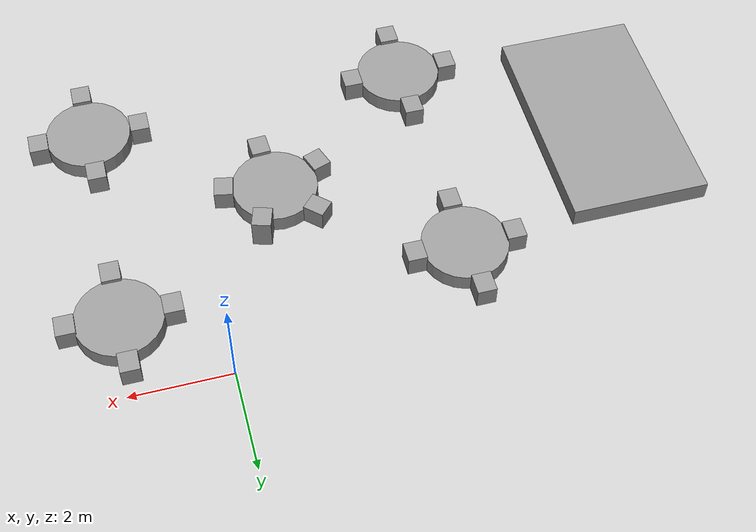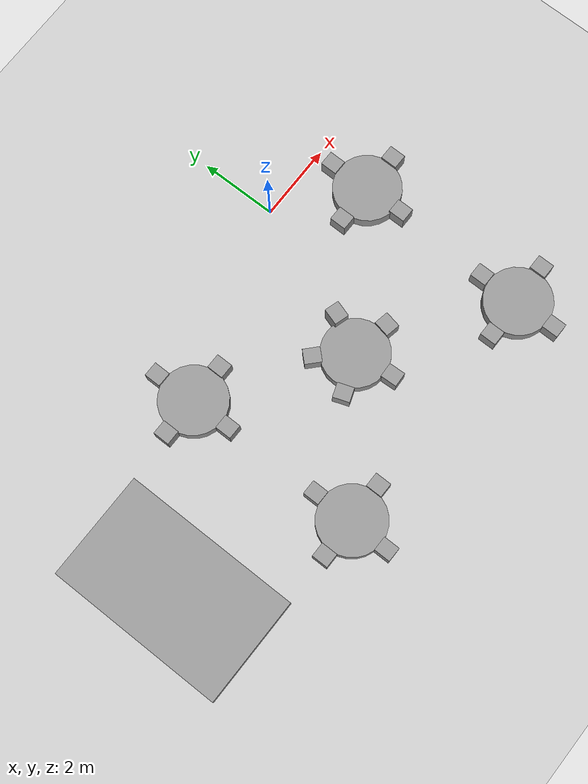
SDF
<sdf version="1.7">
 <world name="default">
  <model name="ground_plane">
   <static>1</static>
   <link name="link">
    <collision name="collision">
     <geometry><plane><normal>0 0 1</normal><size>100 100</size></plane></geometry>
     <surface><friction><ode><mu>100</mu><mu2>50</mu2></ode></friction></surface>
    </collision>
    <visual name="visual">
     <cast_shadows>0</cast_shadows>
     <geometry><plane><normal>0 0 1</normal><size>100 100</size></plane></geometry>
     <material>
      <script><uri>file://media/materials/scripts/gazebo.material</uri><name>Gazebo/Grey</name></script>
     </material>
    </visual>
   </link>
  </model>
  <model name="meeting_room">
   <link name="link_8">
    <inertial>
     <mass>2.00977</mass>
     <inertia>
      <ixx>0.447323</ixx>
      <ixy>0</ixy>
      <ixz>0</ixz>
      <iyy>0.447323</iyy>
      <iyz>0</iyz>
      <izz>0.737777</izz>
     </inertia>
    </inertial>
    <pose>-3.6001 2.26621 -0.007241 0 -0 0</pose>
    <visual name="visual">
     <geometry><cylinder><radius>0.85685</radius><length>0.684338</length></cylinder></geometry>
     <material>
      <lighting>1</lighting>
      <script><uri>file://media/materials/scripts/gazebo.material</uri><name>Gazebo/Grey</name></script>
      <shader type="pixel"/>
     </material>
    </visual>
    <collision name="collision">
     <geometry><cylinder><radius>0.85685</radius><length>0.684338</length></cylinder></geometry>
     <surface>
      <friction>
       <ode><mu>1</mu><mu2>1</mu2><fdir1>0 0 0</fdir1><slip1>0</slip1><slip2>0</slip2></ode>
       <torsional>
        <coefficient>1</coefficient>
        <patch_radius>0</patch_radius>
        <surface_radius>0</surface_radius>
        <use_patch_radius>1</use_patch_radius>
        <ode><slip>0</slip></ode>
       </torsional>
      </friction>
      <bounce><restitution_coefficient>0</restitution_coefficient><threshold>1e+06</threshold></bounce>
      <contact>
       <collide_without_contact>0</collide_without_contact>
       <collide_without_contact_bitmask>1</collide_without_contact_bitmask>
       <collide_bitmask>1</collide_bitmask>
       <ode>
        <soft_cfm>0</soft_cfm>
        <soft_erp>0.2</soft_erp>
        <kp>1e+13</kp>
        <kd>1</kd>
        <max_vel>0.01</max_vel>
        <min_depth>0</min_depth>
       </ode>
       <bullet>
        <split_impulse>1</split_impulse>
        <split_impulse_penetration_threshold>-0.01</split_impulse_penetration_threshold>
        <soft_cfm>0</soft_cfm>
        <soft_erp>0.2</soft_erp>
        <kp>1e+13</kp>
        <kd>1</kd>
       </bullet>
      </contact>
     </surface>
    </collision>
   </link>
   <link name="link_10">
    <inertial>
     <mass>0.135963</mass>
     <inertia>
      <ixx>0.0100134</ixx>
      <ixy>0</ixy>
      <ixz>0</ixz>
      <iyy>0.00955682</iyy>
      <iyz>0</iyz>
      <izz>0.00371094</izz>
     </inertia>
    </inertial>
    <pose>-2.55086 2.26121 -0.007241 0 -0 0</pose>
    <visual name="visual">
     <geometry><box><size>0.378966 0.428848 0.836578</size></box></geometry>
     <material>
      <lighting>1</lighting>
      <script><uri>file://media/materials/scripts/gazebo.material</uri><name>Gazebo/Grey</name></script>
      <shader type="pixel"/>
     </material>
    </visual>
    <collision name="collision">
     <geometry><box><size>0.378966 0.428848 0.836578</size></box></geometry>
     <surface>
      <friction>
       <ode><mu>1</mu><mu2>1</mu2><fdir1>0 0 0</fdir1><slip1>0</slip1><slip2>0</slip2></ode>
       <torsional>
        <coefficient>1</coefficient>
        <patch_radius>0</patch_radius>
        <surface_radius>0</surface_radius>
        <use_patch_radius>1</use_patch_radius>
        <ode><slip>0</slip></ode>
       </torsional>
      </friction>
      <bounce><restitution_coefficient>0</restitution_coefficient><threshold>1e+06</threshold></bounce>
      <contact>
       <collide_without_contact>0</collide_without_contact>
       <collide_without_contact_bitmask>1</collide_without_contact_bitmask>
       <collide_bitmask>1</collide_bitmask>
       <ode>
        <soft_cfm>0</soft_cfm>
        <soft_erp>0.2</soft_erp>
        <kp>1e+13</kp>
        <kd>1</kd>
        <max_vel>0.01</max_vel>
        <min_depth>0</min_depth>
       </ode>
       <bullet>
        <split_impulse>1</split_impulse>
        <split_impulse_penetration_threshold>-0.01</split_impulse_penetration_threshold>
        <soft_cfm>0</soft_cfm>
        <soft_erp>0.2</soft_erp>
        <kp>1e+13</kp>
        <kd>1</kd>
       </bullet>
      </contact>
     </surface>
    </collision>
   </link>
   <link name="link_10_clone">
    <inertial>
     <mass>0.135963</mass>
     <inertia>
      <ixx>0.0100134</ixx>
      <ixy>0</ixy>
      <ixz>0</ixz>
      <iyy>0.00955682</iyy>
      <iyz>0</iyz>
      <izz>0.00371094</izz>
     </inertia>
    </inertial>
    <pose>-3.58226 1.20119 -0.007241 0 -0 0</pose>
    <visual name="visual">
     <geometry><box><size>0.378966 0.428848 0.836578</size></box></geometry>
     <material>
      <lighting>1</lighting>
      <script><uri>file://media/materials/scripts/gazebo.material</uri><name>Gazebo/Grey</name></script>
      <shader type="pixel"/>
     </material>
    </visual>
    <collision name="collision">
     <geometry><box><size>0.378966 0.428848 0.836578</size></box></geometry>
     <surface>
      <friction>
       <ode><mu>1</mu><mu2>1</mu2><fdir1>0 0 0</fdir1><slip1>0</slip1><slip2>0</slip2></ode>
       <torsional>
        <coefficient>1</coefficient>
        <patch_radius>0</patch_radius>
        <surface_radius>0</surface_radius>
        <use_patch_radius>1</use_patch_radius>
        <ode><slip>0</slip></ode>
       </torsional>
      </friction>
      <bounce><restitution_coefficient>0</restitution_coefficient><threshold>1e+06</threshold></bounce>
      <contact>
       <collide_without_contact>0</collide_without_contact>
       <collide_without_contact_bitmask>1</collide_without_contact_bitmask>
       <collide_bitmask>1</collide_bitmask>
       <ode>
        <soft_cfm>0</soft_cfm>
        <soft_erp>0.2</soft_erp>
        <kp>1e+13</kp>
        <kd>1</kd>
        <max_vel>0.01</max_vel>
        <min_depth>0</min_depth>
       </ode>
       <bullet>
        <split_impulse>1</split_impulse>
        <split_impulse_penetration_threshold>-0.01</split_impulse_penetration_threshold>
        <soft_cfm>0</soft_cfm>
        <soft_erp>0.2</soft_erp>
        <kp>1e+13</kp>
        <kd>1</kd>
       </bullet>
      </contact>
     </surface>
    </collision>
   </link>
   <link name="link_10_clone_0">
    <inertial>
     <mass>0.135963</mass>
     <inertia>
      <ixx>0.0100134</ixx>
      <ixy>0</ixy>
      <ixz>0</ixz>
      <iyy>0.00955682</iyy>
      <iyz>0</iyz>
      <izz>0.00371094</izz>
     </inertia>
    </inertial>
    <pose>-4.61664 2.20642 -0.007241 0 -0 0</pose>
    <visual name="visual">
     <geometry><box><size>0.378966 0.428848 0.836578</size></box></geometry>
     <material>
      <lighting>1</lighting>
      <script><uri>file://media/materials/scripts/gazebo.material</uri><name>Gazebo/Grey</name></script>
      <shader type="pixel"/>
     </material>
    </visual>
    <collision name="collision">
     <geometry><box><size>0.378966 0.428848 0.836578</size></box></geometry>
     <surface>
      <friction>
       <ode><mu>1</mu><mu2>1</mu2><fdir1>0 0 0</fdir1><slip1>0</slip1><slip2>0</slip2></ode>
       <torsional>
        <coefficient>1</coefficient>
        <patch_radius>0</patch_radius>
        <surface_radius>0</surface_radius>
        <use_patch_radius>1</use_patch_radius>
        <ode><slip>0</slip></ode>
       </torsional>
      </friction>
      <bounce><restitution_coefficient>0</restitution_coefficient><threshold>1e+06</threshold></bounce>
      <contact>
       <collide_without_contact>0</collide_without_contact>
       <collide_without_contact_bitmask>1</collide_without_contact_bitmask>
       <collide_bitmask>1</collide_bitmask>
       <ode>
        <soft_cfm>0</soft_cfm>
        <soft_erp>0.2</soft_erp>
        <kp>1e+13</kp>
        <kd>1</kd>
        <max_vel>0.01</max_vel>
        <min_depth>0</min_depth>
       </ode>
       <bullet>
        <split_impulse>1</split_impulse>
        <split_impulse_penetration_threshold>-0.01</split_impulse_penetration_threshold>
        <soft_cfm>0</soft_cfm>
        <soft_erp>0.2</soft_erp>
        <kp>1e+13</kp>
        <kd>1</kd>
       </bullet>
      </contact>
     </surface>
    </collision>
   </link>
   <link name="link_10_clone_1">
    <inertial>
     <mass>0.135963</mass>
     <inertia>
      <ixx>0.0100134</ixx>
      <ixy>0</ixy>
      <ixz>0</ixz>
      <iyy>0.00955682</iyy>
      <iyz>0</iyz>
      <izz>0.00371094</izz>
     </inertia>
    </inertial>
    <pose>-3.6042 3.30031 -0.007241 0 -0 0</pose>
    <visual name="visual">
     <geometry><box><size>0.378966 0.428848 0.836578</size></box></geometry>
     <material>
      <lighting>1</lighting>
      <script><uri>file://media/materials/scripts/gazebo.material</uri><name>Gazebo/Grey</name></script>
      <shader type="pixel"/>
     </material>
    </visual>
    <collision name="collision">
     <geometry><box><size>0.378966 0.428848 0.836578</size></box></geometry>
     <surface>
      <friction>
       <ode><mu>1</mu><mu2>1</mu2><fdir1>0 0 0</fdir1><slip1>0</slip1><slip2>0</slip2></ode>
       <torsional>
        <coefficient>1</coefficient>
        <patch_radius>0</patch_radius>
        <surface_radius>0</surface_radius>
        <use_patch_radius>1</use_patch_radius>
        <ode><slip>0</slip></ode>
       </torsional>
      </friction>
      <bounce><restitution_coefficient>0</restitution_coefficient><threshold>1e+06</threshold></bounce>
      <contact>
       <collide_without_contact>0</collide_without_contact>
       <collide_without_contact_bitmask>1</collide_without_contact_bitmask>
       <collide_bitmask>1</collide_bitmask>
       <ode>
        <soft_cfm>0</soft_cfm>
        <soft_erp>0.2</soft_erp>
        <kp>1e+13</kp>
        <kd>1</kd>
        <max_vel>0.01</max_vel>
        <min_depth>0</min_depth>
       </ode>
       <bullet>
        <split_impulse>1</split_impulse>
        <split_impulse_penetration_threshold>-0.01</split_impulse_penetration_threshold>
        <soft_cfm>0</soft_cfm>
        <soft_erp>0.2</soft_erp>
        <kp>1e+13</kp>
        <kd>1</kd>
       </bullet>
      </contact>
     </surface>
    </collision>
   </link>
   <link name="link_10_clone_10">
    <inertial>
     <mass>0.135963</mass>
     <inertia>
      <ixx>0.0100134</ixx>
      <ixy>0</ixy>
      <ixz>0</ixz>
      <iyy>0.00955682</iyy>
      <iyz>0</iyz>
      <izz>0.00371094</izz>
     </inertia>
    </inertial>
    <pose>3.0439 3.40388 -0.007241 0 -0 0</pose>
    <visual name="visual">
     <geometry><box><size>0.378966 0.428848 0.836578</size></box></geometry>
     <material>
      <lighting>1</lighting>
      <script><uri>file://media/materials/scripts/gazebo.material</uri><name>Gazebo/Grey</name></script>
      <shader type="pixel"/>
     </material>
    </visual>
    <collision name="collision">
     <geometry><box><size>0.378966 0.428848 0.836578</size></box></geometry>
     <surface>
      <friction>
       <ode><mu>1</mu><mu2>1</mu2><fdir1>0 0 0</fdir1><slip1>0</slip1><slip2>0</slip2></ode>
       <torsional>
        <coefficient>1</coefficient>
        <patch_radius>0</patch_radius>
        <surface_radius>0</surface_radius>
        <use_patch_radius>1</use_patch_radius>
        <ode><slip>0</slip></ode>
       </torsional>
      </friction>
      <bounce><restitution_coefficient>0</restitution_coefficient><threshold>1e+06</threshold></bounce>
      <contact>
       <collide_without_contact>0</collide_without_contact>
       <collide_without_contact_bitmask>1</collide_without_contact_bitmask>
       <collide_bitmask>1</collide_bitmask>
       <ode>
        <soft_cfm>0</soft_cfm>
        <soft_erp>0.2</soft_erp>
        <kp>1e+13</kp>
        <kd>1</kd>
        <max_vel>0.01</max_vel>
        <min_depth>0</min_depth>
       </ode>
       <bullet>
        <split_impulse>1</split_impulse>
        <split_impulse_penetration_threshold>-0.01</split_impulse_penetration_threshold>
        <soft_cfm>0</soft_cfm>
        <soft_erp>0.2</soft_erp>
        <kp>1e+13</kp>
        <kd>1</kd>
       </bullet>
      </contact>
     </surface>
    </collision>
   </link>
   <link name="link_10_clone_11">
    <inertial>
     <mass>0.135963</mass>
     <inertia>
      <ixx>0.0100134</ixx>
      <ixy>0</ixy>
      <ixz>0</ixz>
      <iyy>0.00955682</iyy>
      <iyz>0</iyz>
      <izz>0.00371094</izz>
     </inertia>
    </inertial>
    <pose>3.07031 -1.23947 -0.007241 0 -0 0</pose>
    <visual name="visual">
     <geometry><box><size>0.378966 0.428848 0.836578</size></box></geometry>
     <material>
      <lighting>1</lighting>
      <script><uri>file://media/materials/scripts/gazebo.material</uri><name>Gazebo/Grey</name></script>
      <shader type="pixel"/>
     </material>
    </visual>
    <collision name="collision">
     <geometry><box><size>0.378966 0.428848 0.836578</size></box></geometry>
     <surface>
      <friction>
       <ode><mu>1</mu><mu2>1</mu2><fdir1>0 0 0</fdir1><slip1>0</slip1><slip2>0</slip2></ode>
       <torsional>
        <coefficient>1</coefficient>
        <patch_radius>0</patch_radius>
        <surface_radius>0</surface_radius>
        <use_patch_radius>1</use_patch_radius>
        <ode><slip>0</slip></ode>
       </torsional>
      </friction>
      <bounce><restitution_coefficient>0</restitution_coefficient><threshold>1e+06</threshold></bounce>
      <contact>
       <collide_without_contact>0</collide_without_contact>
       <collide_without_contact_bitmask>1</collide_without_contact_bitmask>
       <collide_bitmask>1</collide_bitmask>
       <ode>
        <soft_cfm>0</soft_cfm>
        <soft_erp>0.2</soft_erp>
        <kp>1e+13</kp>
        <kd>1</kd>
        <max_vel>0.01</max_vel>
        <min_depth>0</min_depth>
       </ode>
       <bullet>
        <split_impulse>1</split_impulse>
        <split_impulse_penetration_threshold>-0.01</split_impulse_penetration_threshold>
        <soft_cfm>0</soft_cfm>
        <soft_erp>0.2</soft_erp>
        <kp>1e+13</kp>
        <kd>1</kd>
       </bullet>
      </contact>
     </surface>
    </collision>
   </link>
   <link name="link_10_clone_12">
    <inertial>
     <mass>0.135963</mass>
     <inertia>
      <ixx>0.0100134</ixx>
      <ixy>0</ixy>
      <ixz>0</ixz>
      <iyy>0.00955682</iyy>
      <iyz>0</iyz>
      <izz>0.00371094</izz>
     </inertia>
    </inertial>
    <pose>4.06394 -2.2833 -0.007241 0 -0 0</pose>
    <visual name="visual">
     <geometry><box><size>0.378966 0.428848 0.836578</size></box></geometry>
     <material>
      <lighting>1</lighting>
      <script><uri>file://media/materials/scripts/gazebo.material</uri><name>Gazebo/Grey</name></script>
      <shader type="pixel"/>
     </material>
    </visual>
    <collision name="collision">
     <geometry><box><size>0.378966 0.428848 0.836578</size></box></geometry>
     <surface>
      <friction>
       <ode><mu>1</mu><mu2>1</mu2><fdir1>0 0 0</fdir1><slip1>0</slip1><slip2>0</slip2></ode>
       <torsional>
        <coefficient>1</coefficient>
        <patch_radius>0</patch_radius>
        <surface_radius>0</surface_radius>
        <use_patch_radius>1</use_patch_radius>
        <ode><slip>0</slip></ode>
       </torsional>
      </friction>
      <bounce><restitution_coefficient>0</restitution_coefficient><threshold>1e+06</threshold></bounce>
      <contact>
       <collide_without_contact>0</collide_without_contact>
       <collide_without_contact_bitmask>1</collide_without_contact_bitmask>
       <collide_bitmask>1</collide_bitmask>
       <ode>
        <soft_cfm>0</soft_cfm>
        <soft_erp>0.2</soft_erp>
        <kp>1e+13</kp>
        <kd>1</kd>
        <max_vel>0.01</max_vel>
        <min_depth>0</min_depth>
       </ode>
       <bullet>
        <split_impulse>1</split_impulse>
        <split_impulse_penetration_threshold>-0.01</split_impulse_penetration_threshold>
        <soft_cfm>0</soft_cfm>
        <soft_erp>0.2</soft_erp>
        <kp>1e+13</kp>
        <kd>1</kd>
       </bullet>
      </contact>
     </surface>
    </collision>
   </link>
   <link name="link_10_clone_13">
    <inertial>
     <mass>0.135963</mass>
     <inertia>
      <ixx>0.0100134</ixx>
      <ixy>0</ixy>
      <ixz>0</ixz>
      <iyy>0.00955682</iyy>
      <iyz>0</iyz>
      <izz>0.00371094</izz>
     </inertia>
    </inertial>
    <pose>3.12024 -3.33462 -0.007241 0 -0 0</pose>
    <visual name="visual">
     <geometry><box><size>0.378966 0.428848 0.836578</size></box></geometry>
     <material>
      <lighting>1</lighting>
      <script><uri>file://media/materials/scripts/gazebo.material</uri><name>Gazebo/Grey</name></script>
      <shader type="pixel"/>
     </material>
    </visual>
    <collision name="collision">
     <geometry><box><size>0.378966 0.428848 0.836578</size></box></geometry>
     <surface>
      <friction>
       <ode><mu>1</mu><mu2>1</mu2><fdir1>0 0 0</fdir1><slip1>0</slip1><slip2>0</slip2></ode>
       <torsional>
        <coefficient>1</coefficient>
        <patch_radius>0</patch_radius>
        <surface_radius>0</surface_radius>
        <use_patch_radius>1</use_patch_radius>
        <ode><slip>0</slip></ode>
       </torsional>
      </friction>
      <bounce><restitution_coefficient>0</restitution_coefficient><threshold>1e+06</threshold></bounce>
      <contact>
       <collide_without_contact>0</collide_without_contact>
       <collide_without_contact_bitmask>1</collide_without_contact_bitmask>
       <collide_bitmask>1</collide_bitmask>
       <ode>
        <soft_cfm>0</soft_cfm>
        <soft_erp>0.2</soft_erp>
        <kp>1e+13</kp>
        <kd>1</kd>
        <max_vel>0.01</max_vel>
        <min_depth>0</min_depth>
       </ode>
       <bullet>
        <split_impulse>1</split_impulse>
        <split_impulse_penetration_threshold>-0.01</split_impulse_penetration_threshold>
        <soft_cfm>0</soft_cfm>
        <soft_erp>0.2</soft_erp>
        <kp>1e+13</kp>
        <kd>1</kd>
       </bullet>
      </contact>
     </surface>
    </collision>
   </link>
   <link name="link_10_clone_14">
    <inertial>
     <mass>0.135963</mass>
     <inertia>
      <ixx>0.0100134</ixx>
      <ixy>0</ixy>
      <ixz>0</ixz>
      <iyy>0.00955682</iyy>
      <iyz>0</iyz>
      <izz>0.00371094</izz>
     </inertia>
    </inertial>
    <pose>2.06007 -2.30585 -0.007241 0 -0 0</pose>
    <visual name="visual">
     <geometry><box><size>0.378966 0.428848 0.836578</size></box></geometry>
     <material>
      <lighting>1</lighting>
      <script><uri>file://media/materials/scripts/gazebo.material</uri><name>Gazebo/Grey</name></script>
      <shader type="pixel"/>
     </material>
    </visual>
    <collision name="collision">
     <geometry><box><size>0.378966 0.428848 0.836578</size></box></geometry>
     <surface>
      <friction>
       <ode><mu>1</mu><mu2>1</mu2><fdir1>0 0 0</fdir1><slip1>0</slip1><slip2>0</slip2></ode>
       <torsional>
        <coefficient>1</coefficient>
        <patch_radius>0</patch_radius>
        <surface_radius>0</surface_radius>
        <use_patch_radius>1</use_patch_radius>
        <ode><slip>0</slip></ode>
       </torsional>
      </friction>
      <bounce><restitution_coefficient>0</restitution_coefficient><threshold>1e+06</threshold></bounce>
      <contact>
       <collide_without_contact>0</collide_without_contact>
       <collide_without_contact_bitmask>1</collide_without_contact_bitmask>
       <collide_bitmask>1</collide_bitmask>
       <ode>
        <soft_cfm>0</soft_cfm>
        <soft_erp>0.2</soft_erp>
        <kp>1e+13</kp>
        <kd>1</kd>
        <max_vel>0.01</max_vel>
        <min_depth>0</min_depth>
       </ode>
       <bullet>
        <split_impulse>1</split_impulse>
        <split_impulse_penetration_threshold>-0.01</split_impulse_penetration_threshold>
        <soft_cfm>0</soft_cfm>
        <soft_erp>0.2</soft_erp>
        <kp>1e+13</kp>
        <kd>1</kd>
       </bullet>
      </contact>
     </surface>
    </collision>
   </link>
   <link name="link_10_clone_15">
    <inertial>
     <mass>0.135963</mass>
     <inertia>
      <ixx>0.0100134</ixx>
      <ixy>0</ixy>
      <ixz>0</ixz>
      <iyy>0.00955682</iyy>
      <iyz>0</iyz>
      <izz>0.00371094</izz>
     </inertia>
    </inertial>
    <pose>-3.62566 -3.36624 -0.007241 0 -0 0</pose>
    <visual name="visual">
     <geometry><box><size>0.378966 0.428848 0.836578</size></box></geometry>
     <material>
      <lighting>1</lighting>
      <script><uri>file://media/materials/scripts/gazebo.material</uri><name>Gazebo/Grey</name></script>
      <shader type="pixel"/>
     </material>
    </visual>
    <collision name="collision">
     <geometry><box><size>0.378966 0.428848 0.836578</size></box></geometry>
     <surface>
      <friction>
       <ode><mu>1</mu><mu2>1</mu2><fdir1>0 0 0</fdir1><slip1>0</slip1><slip2>0</slip2></ode>
       <torsional>
        <coefficient>1</coefficient>
        <patch_radius>0</patch_radius>
        <surface_radius>0</surface_radius>
        <use_patch_radius>1</use_patch_radius>
        <ode><slip>0</slip></ode>
       </torsional>
      </friction>
      <bounce><restitution_coefficient>0</restitution_coefficient><threshold>1e+06</threshold></bounce>
      <contact>
       <collide_without_contact>0</collide_without_contact>
       <collide_without_contact_bitmask>1</collide_without_contact_bitmask>
       <collide_bitmask>1</collide_bitmask>
       <ode>
        <soft_cfm>0</soft_cfm>
        <soft_erp>0.2</soft_erp>
        <kp>1e+13</kp>
        <kd>1</kd>
        <max_vel>0.01</max_vel>
        <min_depth>0</min_depth>
       </ode>
       <bullet>
        <split_impulse>1</split_impulse>
        <split_impulse_penetration_threshold>-0.01</split_impulse_penetration_threshold>
        <soft_cfm>0</soft_cfm>
        <soft_erp>0.2</soft_erp>
        <kp>1e+13</kp>
        <kd>1</kd>
       </bullet>
      </contact>
     </surface>
    </collision>
   </link>
   <link name="link_10_clone_16">
    <inertial>
     <mass>0.135963</mass>
     <inertia>
      <ixx>0.0100134</ixx>
      <ixy>0</ixy>
      <ixz>0</ixz>
      <iyy>0.00955682</iyy>
      <iyz>0</iyz>
      <izz>0.00371094</izz>
     </inertia>
    </inertial>
    <pose>-2.64022 -2.31269 -0.007241 0 -0 0</pose>
    <visual name="visual">
     <geometry><box><size>0.378966 0.428848 0.836578</size></box></geometry>
     <material>
      <lighting>1</lighting>
      <script><uri>file://media/materials/scripts/gazebo.material</uri><name>Gazebo/Grey</name></script>
      <shader type="pixel"/>
     </material>
    </visual>
    <collision name="collision">
     <geometry><box><size>0.378966 0.428848 0.836578</size></box></geometry>
     <surface>
      <friction>
       <ode><mu>1</mu><mu2>1</mu2><fdir1>0 0 0</fdir1><slip1>0</slip1><slip2>0</slip2></ode>
       <torsional>
        <coefficient>1</coefficient>
        <patch_radius>0</patch_radius>
        <surface_radius>0</surface_radius>
        <use_patch_radius>1</use_patch_radius>
        <ode><slip>0</slip></ode>
       </torsional>
      </friction>
      <bounce><restitution_coefficient>0</restitution_coefficient><threshold>1e+06</threshold></bounce>
      <contact>
       <collide_without_contact>0</collide_without_contact>
       <collide_without_contact_bitmask>1</collide_without_contact_bitmask>
       <collide_bitmask>1</collide_bitmask>
       <ode>
        <soft_cfm>0</soft_cfm>
        <soft_erp>0.2</soft_erp>
        <kp>1e+13</kp>
        <kd>1</kd>
        <max_vel>0.01</max_vel>
        <min_depth>0</min_depth>
       </ode>
       <bullet>
        <split_impulse>1</split_impulse>
        <split_impulse_penetration_threshold>-0.01</split_impulse_penetration_threshold>
        <soft_cfm>0</soft_cfm>
        <soft_erp>0.2</soft_erp>
        <kp>1e+13</kp>
        <kd>1</kd>
       </bullet>
      </contact>
     </surface>
    </collision>
   </link>
   <link name="link_10_clone_17">
    <inertial>
     <mass>0.135963</mass>
     <inertia>
      <ixx>0.0100134</ixx>
      <ixy>0</ixy>
      <ixz>0</ixz>
      <iyy>0.00955682</iyy>
      <iyz>0</iyz>
      <izz>0.00371094</izz>
     </inertia>
    </inertial>
    <pose>-3.66919 -1.31472 -0.007241 0 -0 0</pose>
    <visual name="visual">
     <geometry><box><size>0.378966 0.428848 0.836578</size></box></geometry>
     <material>
      <lighting>1</lighting>
      <script><uri>file://media/materials/scripts/gazebo.material</uri><name>Gazebo/Grey</name></script>
      <shader type="pixel"/>
     </material>
    </visual>
    <collision name="collision">
     <geometry><box><size>0.378966 0.428848 0.836578</size></box></geometry>
     <surface>
      <friction>
       <ode><mu>1</mu><mu2>1</mu2><fdir1>0 0 0</fdir1><slip1>0</slip1><slip2>0</slip2></ode>
       <torsional>
        <coefficient>1</coefficient>
        <patch_radius>0</patch_radius>
        <surface_radius>0</surface_radius>
        <use_patch_radius>1</use_patch_radius>
        <ode><slip>0</slip></ode>
       </torsional>
      </friction>
      <bounce><restitution_coefficient>0</restitution_coefficient><threshold>1e+06</threshold></bounce>
      <contact>
       <collide_without_contact>0</collide_without_contact>
       <collide_without_contact_bitmask>1</collide_without_contact_bitmask>
       <collide_bitmask>1</collide_bitmask>
       <ode>
        <soft_cfm>0</soft_cfm>
        <soft_erp>0.2</soft_erp>
        <kp>1e+13</kp>
        <kd>1</kd>
        <max_vel>0.01</max_vel>
        <min_depth>0</min_depth>
       </ode>
       <bullet>
        <split_impulse>1</split_impulse>
        <split_impulse_penetration_threshold>-0.01</split_impulse_penetration_threshold>
        <soft_cfm>0</soft_cfm>
        <soft_erp>0.2</soft_erp>
        <kp>1e+13</kp>
        <kd>1</kd>
       </bullet>
      </contact>
     </surface>
    </collision>
   </link>
   <link name="link_10_clone_18">
    <inertial>
     <mass>0.135963</mass>
     <inertia>
      <ixx>0.0100134</ixx>
      <ixy>0</ixy>
      <ixz>0</ixz>
      <iyy>0.00955682</iyy>
      <iyz>0</iyz>
      <izz>0.00371094</izz>
     </inertia>
    </inertial>
    <pose>-4.65475 -2.30668 -0.007241 0 -0 0</pose>
    <visual name="visual">
     <geometry><box><size>0.378966 0.428848 0.836578</size></box></geometry>
     <material>
      <lighting>1</lighting>
      <script><uri>file://media/materials/scripts/gazebo.material</uri><name>Gazebo/Grey</name></script>
      <shader type="pixel"/>
     </material>
    </visual>
    <collision name="collision">
     <geometry><box><size>0.378966 0.428848 0.836578</size></box></geometry>
     <surface>
      <friction>
       <ode><mu>1</mu><mu2>1</mu2><fdir1>0 0 0</fdir1><slip1>0</slip1><slip2>0</slip2></ode>
       <torsional>
        <coefficient>1</coefficient>
        <patch_radius>0</patch_radius>
        <surface_radius>0</surface_radius>
        <use_patch_radius>1</use_patch_radius>
        <ode><slip>0</slip></ode>
       </torsional>
      </friction>
      <bounce><restitution_coefficient>0</restitution_coefficient><threshold>1e+06</threshold></bounce>
      <contact>
       <collide_without_contact>0</collide_without_contact>
       <collide_without_contact_bitmask>1</collide_without_contact_bitmask>
       <collide_bitmask>1</collide_bitmask>
       <ode>
        <soft_cfm>0</soft_cfm>
        <soft_erp>0.2</soft_erp>
        <kp>1e+13</kp>
        <kd>1</kd>
        <max_vel>0.01</max_vel>
        <min_depth>0</min_depth>
       </ode>
       <bullet>
        <split_impulse>1</split_impulse>
        <split_impulse_penetration_threshold>-0.01</split_impulse_penetration_threshold>
        <soft_cfm>0</soft_cfm>
        <soft_erp>0.2</soft_erp>
        <kp>1e+13</kp>
        <kd>1</kd>
       </bullet>
      </contact>
     </surface>
    </collision>
   </link>
   <link name="link_10_clone_2">
    <inertial>
     <mass>0.135963</mass>
     <inertia>
      <ixx>0.0100134</ixx>
      <ixy>0</ixy>
      <ixz>0</ixz>
      <iyy>0.00955682</iyy>
      <iyz>0</iyz>
      <izz>0.00371094</izz>
     </inertia>
    </inertial>
    <pose>-0.289488 1.02445 -0.007241 0 -0 0.052417</pose>
    <visual name="visual">
     <geometry><box><size>0.378966 0.428848 0.836578</size></box></geometry>
     <material>
      <lighting>1</lighting>
      <script><uri>file://media/materials/scripts/gazebo.material</uri><name>Gazebo/Grey</name></script>
      <shader type="pixel"/>
     </material>
    </visual>
    <collision name="collision">
     <geometry><box><size>0.378966 0.428848 0.836578</size></box></geometry>
     <surface>
      <friction>
       <ode><mu>1</mu><mu2>1</mu2><fdir1>0 0 0</fdir1><slip1>0</slip1><slip2>0</slip2></ode>
       <torsional>
        <coefficient>1</coefficient>
        <patch_radius>0</patch_radius>
        <surface_radius>0</surface_radius>
        <use_patch_radius>1</use_patch_radius>
        <ode><slip>0</slip></ode>
       </torsional>
      </friction>
      <bounce><restitution_coefficient>0</restitution_coefficient><threshold>1e+06</threshold></bounce>
      <contact>
       <collide_without_contact>0</collide_without_contact>
       <collide_without_contact_bitmask>1</collide_without_contact_bitmask>
       <collide_bitmask>1</collide_bitmask>
       <ode>
        <soft_cfm>0</soft_cfm>
        <soft_erp>0.2</soft_erp>
        <kp>1e+13</kp>
        <kd>1</kd>
        <max_vel>0.01</max_vel>
        <min_depth>0</min_depth>
       </ode>
       <bullet>
        <split_impulse>1</split_impulse>
        <split_impulse_penetration_threshold>-0.01</split_impulse_penetration_threshold>
        <soft_cfm>0</soft_cfm>
        <soft_erp>0.2</soft_erp>
        <kp>1e+13</kp>
        <kd>1</kd>
       </bullet>
      </contact>
     </surface>
    </collision>
   </link>
   <link name="link_10_clone_3">
    <inertial>
     <mass>0.135963</mass>
     <inertia>
      <ixx>0.0100134</ixx>
      <ixy>0</ixy>
      <ixz>0</ixz>
      <iyy>0.00955682</iyy>
      <iyz>0</iyz>
      <izz>0.00371094</izz>
     </inertia>
    </inertial>
    <pose>0.762014 0.371243 -0.007241 0 -0 0.343674</pose>
    <visual name="visual">
     <geometry><box><size>0.378966 0.428848 0.836578</size></box></geometry>
     <material>
      <lighting>1</lighting>
      <script><uri>file://media/materials/scripts/gazebo.material</uri><name>Gazebo/Grey</name></script>
      <shader type="pixel"/>
     </material>
    </visual>
    <collision name="collision">
     <geometry><box><size>0.378966 0.428848 0.836578</size></box></geometry>
     <surface>
      <friction>
       <ode><mu>1</mu><mu2>1</mu2><fdir1>0 0 0</fdir1><slip1>0</slip1><slip2>0</slip2></ode>
       <torsional>
        <coefficient>1</coefficient>
        <patch_radius>0</patch_radius>
        <surface_radius>0</surface_radius>
        <use_patch_radius>1</use_patch_radius>
        <ode><slip>0</slip></ode>
       </torsional>
      </friction>
      <bounce><restitution_coefficient>0</restitution_coefficient><threshold>1e+06</threshold></bounce>
      <contact>
       <collide_without_contact>0</collide_without_contact>
       <collide_without_contact_bitmask>1</collide_without_contact_bitmask>
       <collide_bitmask>1</collide_bitmask>
       <ode>
        <soft_cfm>0</soft_cfm>
        <soft_erp>0.2</soft_erp>
        <kp>1e+13</kp>
        <kd>1</kd>
        <max_vel>0.01</max_vel>
        <min_depth>0</min_depth>
       </ode>
       <bullet>
        <split_impulse>1</split_impulse>
        <split_impulse_penetration_threshold>-0.01</split_impulse_penetration_threshold>
        <soft_cfm>0</soft_cfm>
        <soft_erp>0.2</soft_erp>
        <kp>1e+13</kp>
        <kd>1</kd>
       </bullet>
      </contact>
     </surface>
    </collision>
   </link>
   <link name="link_10_clone_4">
    <inertial>
     <mass>0.135963</mass>
     <inertia>
      <ixx>0.0100134</ixx>
      <ixy>0</ixy>
      <ixz>0</ixz>
      <iyy>0.00955682</iyy>
      <iyz>0</iyz>
      <izz>0.00371094</izz>
     </inertia>
    </inertial>
    <pose>-0.62476 -0.914207 0.188262 0 0 -0.294872</pose>
    <visual name="visual">
     <geometry><box><size>0.378966 0.428848 0.836578</size></box></geometry>
     <material>
      <lighting>1</lighting>
      <script><uri>file://media/materials/scripts/gazebo.material</uri><name>Gazebo/Grey</name></script>
      <shader type="pixel"/>
     </material>
    </visual>
    <collision name="collision">
     <geometry><box><size>0.378966 0.428848 0.836578</size></box></geometry>
     <surface>
      <friction>
       <ode><mu>1</mu><mu2>1</mu2><fdir1>0 0 0</fdir1><slip1>0</slip1><slip2>0</slip2></ode>
       <torsional>
        <coefficient>1</coefficient>
        <patch_radius>0</patch_radius>
        <surface_radius>0</surface_radius>
        <use_patch_radius>1</use_patch_radius>
        <ode><slip>0</slip></ode>
       </torsional>
      </friction>
      <bounce><restitution_coefficient>0</restitution_coefficient><threshold>1e+06</threshold></bounce>
      <contact>
       <collide_without_contact>0</collide_without_contact>
       <collide_without_contact_bitmask>1</collide_without_contact_bitmask>
       <collide_bitmask>1</collide_bitmask>
       <ode>
        <soft_cfm>0</soft_cfm>
        <soft_erp>0.2</soft_erp>
        <kp>1e+13</kp>
        <kd>1</kd>
        <max_vel>0.01</max_vel>
        <min_depth>0</min_depth>
       </ode>
       <bullet>
        <split_impulse>1</split_impulse>
        <split_impulse_penetration_threshold>-0.01</split_impulse_penetration_threshold>
        <soft_cfm>0</soft_cfm>
        <soft_erp>0.2</soft_erp>
        <kp>1e+13</kp>
        <kd>1</kd>
       </bullet>
      </contact>
     </surface>
    </collision>
   </link>
   <link name="link_10_clone_5">
    <inertial>
     <mass>0.135963</mass>
     <inertia>
      <ixx>0.0100134</ixx>
      <ixy>0</ixy>
      <ixz>0</ixz>
      <iyy>0.00955682</iyy>
      <iyz>0</iyz>
      <izz>0.00371094</izz>
     </inertia>
    </inertial>
    <pose>-1.18714 0.162653 -0.007241 0 0 -0.193748</pose>
    <visual name="visual">
     <geometry><box><size>0.378966 0.428848 0.836578</size></box></geometry>
     <material>
      <lighting>1</lighting>
      <script><uri>file://media/materials/scripts/gazebo.material</uri><name>Gazebo/Grey</name></script>
      <shader type="pixel"/>
     </material>
    </visual>
    <collision name="collision">
     <geometry><box><size>0.378966 0.428848 0.836578</size></box></geometry>
     <surface>
      <friction>
       <ode><mu>1</mu><mu2>1</mu2><fdir1>0 0 0</fdir1><slip1>0</slip1><slip2>0</slip2></ode>
       <torsional>
        <coefficient>1</coefficient>
        <patch_radius>0</patch_radius>
        <surface_radius>0</surface_radius>
        <use_patch_radius>1</use_patch_radius>
        <ode><slip>0</slip></ode>
       </torsional>
      </friction>
      <bounce><restitution_coefficient>0</restitution_coefficient><threshold>1e+06</threshold></bounce>
      <contact>
       <collide_without_contact>0</collide_without_contact>
       <collide_without_contact_bitmask>1</collide_without_contact_bitmask>
       <collide_bitmask>1</collide_bitmask>
       <ode>
        <soft_cfm>0</soft_cfm>
        <soft_erp>0.2</soft_erp>
        <kp>1e+13</kp>
        <kd>1</kd>
        <max_vel>0.01</max_vel>
        <min_depth>0</min_depth>
       </ode>
       <bullet>
        <split_impulse>1</split_impulse>
        <split_impulse_penetration_threshold>-0.01</split_impulse_penetration_threshold>
        <soft_cfm>0</soft_cfm>
        <soft_erp>0.2</soft_erp>
        <kp>1e+13</kp>
        <kd>1</kd>
       </bullet>
      </contact>
     </surface>
    </collision>
   </link>
   <link name="link_10_clone_6">
    <inertial>
     <mass>0.135963</mass>
     <inertia>
      <ixx>0.0100134</ixx>
      <ixy>0</ixy>
      <ixz>0</ixz>
      <iyy>0.00955682</iyy>
      <iyz>0</iyz>
      <izz>0.00371094</izz>
     </inertia>
    </inertial>
    <pose>0.511196 -0.75503 -0.007241 0 -0 0.818043</pose>
    <visual name="visual">
     <geometry><box><size>0.378966 0.428848 0.836578</size></box></geometry>
     <material>
      <lighting>1</lighting>
      <script><uri>file://media/materials/scripts/gazebo.material</uri><name>Gazebo/Grey</name></script>
      <shader type="pixel"/>
     </material>
    </visual>
    <collision name="collision">
     <geometry><box><size>0.378966 0.428848 0.836578</size></box></geometry>
     <surface>
      <friction>
       <ode><mu>1</mu><mu2>1</mu2><fdir1>0 0 0</fdir1><slip1>0</slip1><slip2>0</slip2></ode>
       <torsional>
        <coefficient>1</coefficient>
        <patch_radius>0</patch_radius>
        <surface_radius>0</surface_radius>
        <use_patch_radius>1</use_patch_radius>
        <ode><slip>0</slip></ode>
       </torsional>
      </friction>
      <bounce><restitution_coefficient>0</restitution_coefficient><threshold>1e+06</threshold></bounce>
      <contact>
       <collide_without_contact>0</collide_without_contact>
       <collide_without_contact_bitmask>1</collide_without_contact_bitmask>
       <collide_bitmask>1</collide_bitmask>
       <ode>
        <soft_cfm>0</soft_cfm>
        <soft_erp>0.2</soft_erp>
        <kp>1e+13</kp>
        <kd>1</kd>
        <max_vel>0.01</max_vel>
        <min_depth>0</min_depth>
       </ode>
       <bullet>
        <split_impulse>1</split_impulse>
        <split_impulse_penetration_threshold>-0.01</split_impulse_penetration_threshold>
        <soft_cfm>0</soft_cfm>
        <soft_erp>0.2</soft_erp>
        <kp>1e+13</kp>
        <kd>1</kd>
       </bullet>
      </contact>
     </surface>
    </collision>
   </link>
   <link name="link_10_clone_7">
    <inertial>
     <mass>0.135963</mass>
     <inertia>
      <ixx>0.0100134</ixx>
      <ixy>0</ixy>
      <ixz>0</ixz>
      <iyy>0.00955682</iyy>
      <iyz>0</iyz>
      <izz>0.00371094</izz>
     </inertia>
    </inertial>
    <pose>1.98924 2.35478 -0.007241 0 -0 0</pose>
    <visual name="visual">
     <geometry><box><size>0.378966 0.428848 0.836578</size></box></geometry>
     <material>
      <lighting>1</lighting>
      <script><uri>file://media/materials/scripts/gazebo.material</uri><name>Gazebo/Grey</name></script>
      <shader type="pixel"/>
     </material>
    </visual>
    <collision name="collision">
     <geometry><box><size>0.378966 0.428848 0.836578</size></box></geometry>
     <surface>
      <friction>
       <ode><mu>1</mu><mu2>1</mu2><fdir1>0 0 0</fdir1><slip1>0</slip1><slip2>0</slip2></ode>
       <torsional>
        <coefficient>1</coefficient>
        <patch_radius>0</patch_radius>
        <surface_radius>0</surface_radius>
        <use_patch_radius>1</use_patch_radius>
        <ode><slip>0</slip></ode>
       </torsional>
      </friction>
      <bounce><restitution_coefficient>0</restitution_coefficient><threshold>1e+06</threshold></bounce>
      <contact>
       <collide_without_contact>0</collide_without_contact>
       <collide_without_contact_bitmask>1</collide_without_contact_bitmask>
       <collide_bitmask>1</collide_bitmask>
       <ode>
        <soft_cfm>0</soft_cfm>
        <soft_erp>0.2</soft_erp>
        <kp>1e+13</kp>
        <kd>1</kd>
        <max_vel>0.01</max_vel>
        <min_depth>0</min_depth>
       </ode>
       <bullet>
        <split_impulse>1</split_impulse>
        <split_impulse_penetration_threshold>-0.01</split_impulse_penetration_threshold>
        <soft_cfm>0</soft_cfm>
        <soft_erp>0.2</soft_erp>
        <kp>1e+13</kp>
        <kd>1</kd>
       </bullet>
      </contact>
     </surface>
    </collision>
   </link>
   <link name="link_10_clone_8">
    <inertial>
     <mass>0.135963</mass>
     <inertia>
      <ixx>0.0100134</ixx>
      <ixy>0</ixy>
      <ixz>0</ixz>
      <iyy>0.00955682</iyy>
      <iyz>0</iyz>
      <izz>0.00371094</izz>
     </inertia>
    </inertial>
    <pose>3.02347 1.32605 -0.007241 0 -0 0</pose>
    <visual name="visual">
     <geometry><box><size>0.378966 0.428848 0.836578</size></box></geometry>
     <material>
      <lighting>1</lighting>
      <script><uri>file://media/materials/scripts/gazebo.material</uri><name>Gazebo/Grey</name></script>
      <shader type="pixel"/>
     </material>
    </visual>
    <collision name="collision">
     <geometry><box><size>0.378966 0.428848 0.836578</size></box></geometry>
     <surface>
      <friction>
       <ode><mu>1</mu><mu2>1</mu2><fdir1>0 0 0</fdir1><slip1>0</slip1><slip2>0</slip2></ode>
       <torsional>
        <coefficient>1</coefficient>
        <patch_radius>0</patch_radius>
        <surface_radius>0</surface_radius>
        <use_patch_radius>1</use_patch_radius>
        <ode><slip>0</slip></ode>
       </torsional>
      </friction>
      <bounce><restitution_coefficient>0</restitution_coefficient><threshold>1e+06</threshold></bounce>
      <contact>
       <collide_without_contact>0</collide_without_contact>
       <collide_without_contact_bitmask>1</collide_without_contact_bitmask>
       <collide_bitmask>1</collide_bitmask>
       <ode>
        <soft_cfm>0</soft_cfm>
        <soft_erp>0.2</soft_erp>
        <kp>1e+13</kp>
        <kd>1</kd>
        <max_vel>0.01</max_vel>
        <min_depth>0</min_depth>
       </ode>
       <bullet>
        <split_impulse>1</split_impulse>
        <split_impulse_penetration_threshold>-0.01</split_impulse_penetration_threshold>
        <soft_cfm>0</soft_cfm>
        <soft_erp>0.2</soft_erp>
        <kp>1e+13</kp>
        <kd>1</kd>
       </bullet>
      </contact>
     </surface>
    </collision>
   </link>
   <link name="link_10_clone_9">
    <inertial>
     <mass>0.135963</mass>
     <inertia>
      <ixx>0.0100134</ixx>
      <ixy>0</ixy>
      <ixz>0</ixz>
      <iyy>0.00955682</iyy>
      <iyz>0</iyz>
      <izz>0.00371094</izz>
     </inertia>
    </inertial>
    <pose>4.0283 2.37447 -0.007241 0 -0 0</pose>
    <visual name="visual">
     <geometry><box><size>0.378966 0.428848 0.836578</size></box></geometry>
     <material>
      <lighting>1</lighting>
      <script><uri>file://media/materials/scripts/gazebo.material</uri><name>Gazebo/Grey</name></script>
      <shader type="pixel"/>
     </material>
    </visual>
    <collision name="collision">
     <geometry><box><size>0.378966 0.428848 0.836578</size></box></geometry>
     <surface>
      <friction>
       <ode><mu>1</mu><mu2>1</mu2><fdir1>0 0 0</fdir1><slip1>0</slip1><slip2>0</slip2></ode>
       <torsional>
        <coefficient>1</coefficient>
        <patch_radius>0</patch_radius>
        <surface_radius>0</surface_radius>
        <use_patch_radius>1</use_patch_radius>
        <ode><slip>0</slip></ode>
       </torsional>
      </friction>
      <bounce><restitution_coefficient>0</restitution_coefficient><threshold>1e+06</threshold></bounce>
      <contact>
       <collide_without_contact>0</collide_without_contact>
       <collide_without_contact_bitmask>1</collide_without_contact_bitmask>
       <collide_bitmask>1</collide_bitmask>
       <ode>
        <soft_cfm>0</soft_cfm>
        <soft_erp>0.2</soft_erp>
        <kp>1e+13</kp>
        <kd>1</kd>
        <max_vel>0.01</max_vel>
        <min_depth>0</min_depth>
       </ode>
       <bullet>
        <split_impulse>1</split_impulse>
        <split_impulse_penetration_threshold>-0.01</split_impulse_penetration_threshold>
        <soft_cfm>0</soft_cfm>
        <soft_erp>0.2</soft_erp>
        <kp>1e+13</kp>
        <kd>1</kd>
       </bullet>
      </contact>
     </surface>
    </collision>
   </link>
   <link name="link_8_clone">
    <inertial>
     <mass>2.00977</mass>
     <inertia>
      <ixx>0.447323</ixx>
      <ixy>0</ixy>
      <ixz>0</ixz>
      <iyy>0.447323</iyy>
      <iyz>0</iyz>
      <izz>0.737777</izz>
     </inertia>
    </inertial>
    <pose>-3.65468 -2.32678 -0.007241 0 -0 0</pose>
    <visual name="visual">
     <geometry><cylinder><radius>0.85685</radius><length>0.684338</length></cylinder></geometry>
     <material>
      <lighting>1</lighting>
      <script><uri>file://media/materials/scripts/gazebo.material</uri><name>Gazebo/Grey</name></script>
      <shader type="pixel"/>
     </material>
    </visual>
    <collision name="collision">
     <geometry><cylinder><radius>0.85685</radius><length>0.684338</length></cylinder></geometry>
     <surface>
      <friction>
       <ode><mu>1</mu><mu2>1</mu2><fdir1>0 0 0</fdir1><slip1>0</slip1><slip2>0</slip2></ode>
       <torsional>
        <coefficient>1</coefficient>
        <patch_radius>0</patch_radius>
        <surface_radius>0</surface_radius>
        <use_patch_radius>1</use_patch_radius>
        <ode><slip>0</slip></ode>
       </torsional>
      </friction>
      <bounce><restitution_coefficient>0</restitution_coefficient><threshold>1e+06</threshold></bounce>
      <contact>
       <collide_without_contact>0</collide_without_contact>
       <collide_without_contact_bitmask>1</collide_without_contact_bitmask>
       <collide_bitmask>1</collide_bitmask>
       <ode>
        <soft_cfm>0</soft_cfm>
        <soft_erp>0.2</soft_erp>
        <kp>1e+13</kp>
        <kd>1</kd>
        <max_vel>0.01</max_vel>
        <min_depth>0</min_depth>
       </ode>
       <bullet>
        <split_impulse>1</split_impulse>
        <split_impulse_penetration_threshold>-0.01</split_impulse_penetration_threshold>
        <soft_cfm>0</soft_cfm>
        <soft_erp>0.2</soft_erp>
        <kp>1e+13</kp>
        <kd>1</kd>
       </bullet>
      </contact>
     </surface>
    </collision>
   </link>
   <link name="link_8_clone_0">
    <inertial>
     <mass>2.00977</mass>
     <inertia>
      <ixx>0.447323</ixx>
      <ixy>0</ixy>
      <ixz>0</ixz>
      <iyy>0.447323</iyy>
      <iyz>0</iyz>
      <izz>0.737777</izz>
     </inertia>
    </inertial>
    <pose>-0.186919 -0.002454 -0.007241 0 -0 0</pose>
    <visual name="visual">
     <geometry><cylinder><radius>0.85685</radius><length>0.684338</length></cylinder></geometry>
     <material>
      <lighting>1</lighting>
      <script><uri>file://media/materials/scripts/gazebo.material</uri><name>Gazebo/Grey</name></script>
      <shader type="pixel"/>
     </material>
    </visual>
    <collision name="collision">
     <geometry><cylinder><radius>0.85685</radius><length>0.684338</length></cylinder></geometry>
     <surface>
      <friction>
       <ode><mu>1</mu><mu2>1</mu2><fdir1>0 0 0</fdir1><slip1>0</slip1><slip2>0</slip2></ode>
       <torsional>
        <coefficient>1</coefficient>
        <patch_radius>0</patch_radius>
        <surface_radius>0</surface_radius>
        <use_patch_radius>1</use_patch_radius>
        <ode><slip>0</slip></ode>
       </torsional>
      </friction>
      <bounce><restitution_coefficient>0</restitution_coefficient><threshold>1e+06</threshold></bounce>
      <contact>
       <collide_without_contact>0</collide_without_contact>
       <collide_without_contact_bitmask>1</collide_without_contact_bitmask>
       <collide_bitmask>1</collide_bitmask>
       <ode>
        <soft_cfm>0</soft_cfm>
        <soft_erp>0.2</soft_erp>
        <kp>1e+13</kp>
        <kd>1</kd>
        <max_vel>0.01</max_vel>
        <min_depth>0</min_depth>
       </ode>
       <bullet>
        <split_impulse>1</split_impulse>
        <split_impulse_penetration_threshold>-0.01</split_impulse_penetration_threshold>
        <soft_cfm>0</soft_cfm>
        <soft_erp>0.2</soft_erp>
        <kp>1e+13</kp>
        <kd>1</kd>
       </bullet>
      </contact>
     </surface>
    </collision>
   </link>
   <link name="link_8_clone_1">
    <inertial>
     <mass>2.00977</mass>
     <inertia>
      <ixx>0.447323</ixx>
      <ixy>0</ixy>
      <ixz>0</ixz>
      <iyy>0.447323</iyy>
      <iyz>0</iyz>
      <izz>0.737777</izz>
     </inertia>
    </inertial>
    <pose>3.00582 2.37203 -0.007241 0 -0 0</pose>
    <visual name="visual">
     <geometry><cylinder><radius>0.85685</radius><length>0.684338</length></cylinder></geometry>
     <material>
      <lighting>1</lighting>
      <script><uri>file://media/materials/scripts/gazebo.material</uri><name>Gazebo/Grey</name></script>
      <shader type="pixel"/>
     </material>
    </visual>
    <collision name="collision">
     <geometry><cylinder><radius>0.85685</radius><length>0.684338</length></cylinder></geometry>
     <surface>
      <friction>
       <ode><mu>1</mu><mu2>1</mu2><fdir1>0 0 0</fdir1><slip1>0</slip1><slip2>0</slip2></ode>
       <torsional>
        <coefficient>1</coefficient>
        <patch_radius>0</patch_radius>
        <surface_radius>0</surface_radius>
        <use_patch_radius>1</use_patch_radius>
        <ode><slip>0</slip></ode>
       </torsional>
      </friction>
      <bounce><restitution_coefficient>0</restitution_coefficient><threshold>1e+06</threshold></bounce>
      <contact>
       <collide_without_contact>0</collide_without_contact>
       <collide_without_contact_bitmask>1</collide_without_contact_bitmask>
       <collide_bitmask>1</collide_bitmask>
       <ode>
        <soft_cfm>0</soft_cfm>
        <soft_erp>0.2</soft_erp>
        <kp>1e+13</kp>
        <kd>1</kd>
        <max_vel>0.01</max_vel>
        <min_depth>0</min_depth>
       </ode>
       <bullet>
        <split_impulse>1</split_impulse>
        <split_impulse_penetration_threshold>-0.01</split_impulse_penetration_threshold>
        <soft_cfm>0</soft_cfm>
        <soft_erp>0.2</soft_erp>
        <kp>1e+13</kp>
        <kd>1</kd>
       </bullet>
      </contact>
     </surface>
    </collision>
   </link>
   <link name="link_8_clone_2">
    <inertial>
     <mass>2.00977</mass>
     <inertia>
      <ixx>0.447323</ixx>
      <ixy>0</ixy>
      <ixz>0</ixz>
      <iyy>0.447323</iyy>
      <iyz>0</iyz>
      <izz>0.737777</izz>
     </inertia>
    </inertial>
    <pose>3.06561 -2.28958 -0.007241 0 -0 0</pose>
    <visual name="visual">
     <geometry><cylinder><radius>0.85685</radius><length>0.684338</length></cylinder></geometry>
     <material>
      <lighting>1</lighting>
      <script><uri>file://media/materials/scripts/gazebo.material</uri><name>Gazebo/Grey</name></script>
      <shader type="pixel"/>
     </material>
    </visual>
    <collision name="collision">
     <geometry><cylinder><radius>0.85685</radius><length>0.684338</length></cylinder></geometry>
     <surface>
      <friction>
       <ode><mu>1</mu><mu2>1</mu2><fdir1>0 0 0</fdir1><slip1>0</slip1><slip2>0</slip2></ode>
       <torsional>
        <coefficient>1</coefficient>
        <patch_radius>0</patch_radius>
        <surface_radius>0</surface_radius>
        <use_patch_radius>1</use_patch_radius>
        <ode><slip>0</slip></ode>
       </torsional>
      </friction>
      <bounce><restitution_coefficient>0</restitution_coefficient><threshold>1e+06</threshold></bounce>
      <contact>
       <collide_without_contact>0</collide_without_contact>
       <collide_without_contact_bitmask>1</collide_without_contact_bitmask>
       <collide_bitmask>1</collide_bitmask>
       <ode>
        <soft_cfm>0</soft_cfm>
        <soft_erp>0.2</soft_erp>
        <kp>1e+13</kp>
        <kd>1</kd>
        <max_vel>0.01</max_vel>
        <min_depth>0</min_depth>
       </ode>
       <bullet>
        <split_impulse>1</split_impulse>
        <split_impulse_penetration_threshold>-0.01</split_impulse_penetration_threshold>
        <soft_cfm>0</soft_cfm>
        <soft_erp>0.2</soft_erp>
        <kp>1e+13</kp>
        <kd>1</kd>
       </bullet>
      </contact>
     </surface>
    </collision>
   </link>
   <link name="link_9">
    <inertial>
     <mass>9.84218</mass>
     <inertia><ixx>17.9812</ixx><ixy>0</ixy><ixz>0</ixz><iyy>6.8565</iyy><iyz>0</iyz><izz>23.88</izz></inertia>
    </inertial>
    <pose>6.74278 0.126769 -0.007241 0 -0 0</pose>
    <visual name="visual">
     <geometry><box><size>2.78854 4.61948 0.764067</size></box></geometry>
     <material>
      <lighting>1</lighting>
      <script><uri>file://media/materials/scripts/gazebo.material</uri><name>Gazebo/Grey</name></script>
      <shader type="pixel"/>
     </material>
    </visual>
    <collision name="collision">
     <geometry><box><size>2.78854 4.61948 0.764067</size></box></geometry>
     <surface>
      <friction>
       <ode><mu>1</mu><mu2>1</mu2><fdir1>0 0 0</fdir1><slip1>0</slip1><slip2>0</slip2></ode>
       <torsional>
        <coefficient>1</coefficient>
        <patch_radius>0</patch_radius>
        <surface_radius>0</surface_radius>
        <use_patch_radius>1</use_patch_radius>
        <ode><slip>0</slip></ode>
       </torsional>
      </friction>
      <bounce><restitution_coefficient>0</restitution_coefficient><threshold>1e+06</threshold></bounce>
      <contact>
       <collide_without_contact>0</collide_without_contact>
       <collide_without_contact_bitmask>1</collide_without_contact_bitmask>
       <collide_bitmask>1</collide_bitmask>
       <ode>
        <soft_cfm>0</soft_cfm>
        <soft_erp>0.2</soft_erp>
        <kp>1e+13</kp>
        <kd>1</kd>
        <max_vel>0.01</max_vel>
        <min_depth>0</min_depth>
       </ode>
       <bullet>
        <split_impulse>1</split_impulse>
        <split_impulse_penetration_threshold>-0.01</split_impulse_penetration_threshold>
        <soft_cfm>0</soft_cfm>
        <soft_erp>0.2</soft_erp>
        <kp>1e+13</kp>
        <kd>1</kd>
       </bullet>
      </contact>
     </surface>
    </collision>
   </link>
   <static>1</static>
   <pose>-1.80466 -3.85553 0 0 -0 3.13639</pose>
  </model>
 </world>
</sdf>
